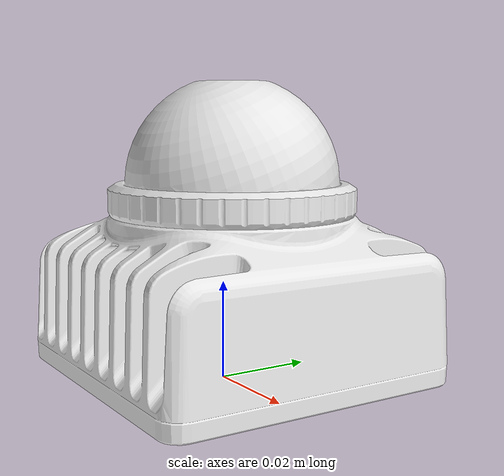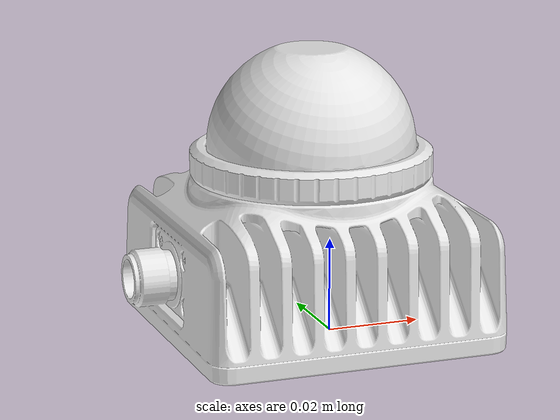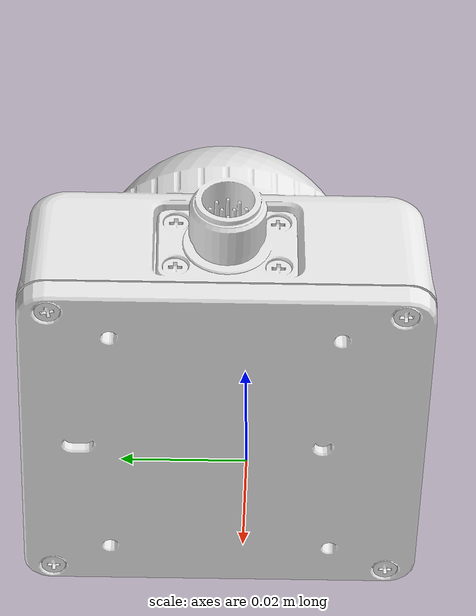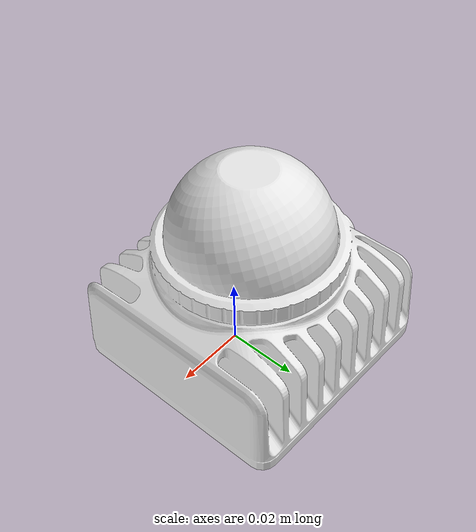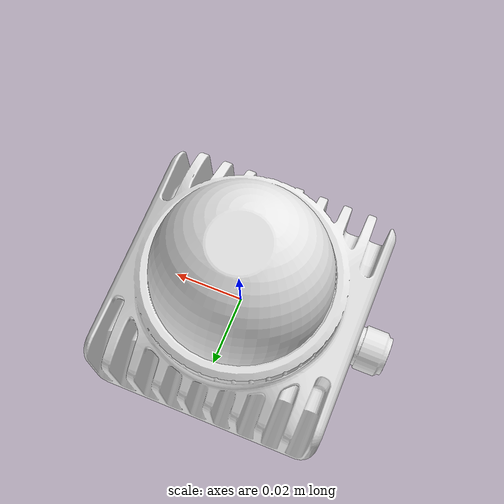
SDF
<?xml version="1.0"?>
<sdf version='1.6'>
  <model name='livox_mid360'>
    <link name='link'>
      <pose frame=''>0 0 0 0 -0 0</pose>
      <inertial>
        <pose frame=''>0 0 0 0 0 0</pose>
        <mass>0.5</mass>
        <inertia>
          <ixx>0.0025</ixx>
          <ixy>0</ixy>
          <ixz>0</ixz>
          <iyy>0.0025</iyy>
          <iyz>0</iyz>
          <izz>0.0042</izz>
        </inertia>
      </inertial>
      <collision name='link_fixed_joint_lump__oasis_300_collision'>
        <pose frame=''>0 0 0.03 0 0 0</pose>
        <geometry>
          <box>
						<size>0.06 0.06 0.06</size>
          </box>
        </geometry>
        <surface>
          <contact>
            <ode>
              <min_depth>0.001</min_depth>
              <max_vel>0</max_vel>
            </ode>
          </contact>
          <friction>
            <ode/>
          </friction>
        </surface>
      </collision>
      <visual name='link_fixed_joint_lump__oasis_300_visual'>
        <pose frame=''>0.03 -0.03 0 1.57 0 3.14159</pose>
        <geometry>
          <mesh>
            <scale>0.001 0.001 0.001</scale>
            <uri>model://livox_mid360/meshes/mid-360-asm.STL</uri>
          </mesh>
        </geometry>
        <material>
          <script>
            <name>Gazebo/White</name>
            <uri>file://media/materials/scripts/gazebo.material</uri>
          </script>
        </material>
      </visual>
      <gravity>1</gravity>
      <velocity_decay/>
      <sensor name='laser_livox' type='ray'>
        <visualize>1</visualize>
        <update_rate>10</update_rate>
        <plugin name='gazebo_ros_laser_controller' filename='liblivox_laser_simulation.so'>
          <ray>
            <scan>
              <horizontal>
                <samples>100</samples>
                <resolution>1</resolution>
                <min_angle>-0.614355377778</min_angle>
                <max_angle>0.614355377778</max_angle>
              </horizontal>
              <vertical>
                <samples>50</samples>
                <resolution>1</resolution>
                <min_angle>-0.614355377778</min_angle>
                <max_angle>0.614355377778</max_angle>
              </vertical>
            </scan>
            <range>
              <min>0.1</min>
              <max>200.0</max>
              <resolution>0.002</resolution>
            </range>
            <noise>
              <type>gaussian</type>
              <mean>0.0</mean>
              <stddev>0.01</stddev>
            </noise>
          </ray>
          <visualize>1</visualize>
          <samples>10000</samples>
          <downsample>1</downsample>
          <csv_file_name>package://sunray_simulator/models/livox_mid360/scan_mode/mid360.csv</csv_file_name>
          <topic_name>livox</topic_name>
          <frameName>laser_3d</frameName>
          <publish_pointcloud_type>1</publish_pointcloud_type>
        </plugin>
        <pose frame=''>0 0 0.3 0 0 0</pose>
      </sensor>
    </link>
  </model>
</sdf>
